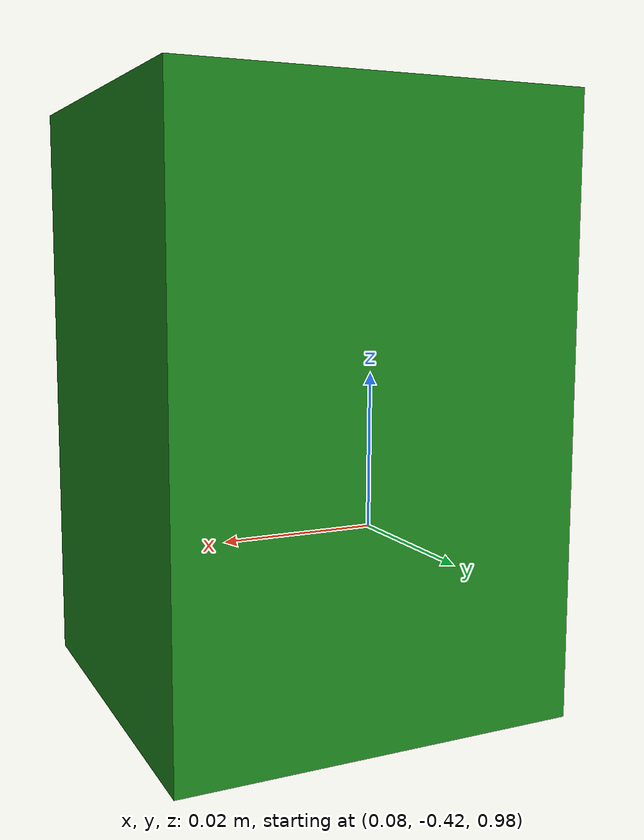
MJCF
<mujoco model="panda objects">

  <asset>
    <material name="obj_green" rgba="0.1 0.5 0.1 1"/>
  </asset>

  <worldbody>
    <!-- Manipulable cube for Panda -->
    <body name="box" pos="0.1 -0.4 1">
      <freejoint/>
      <geom type="box" name="box" size="0.02 0.02 0.03" condim="6" mass="0.05"
        friction="3 0.2 0.1" material="obj_green" contype="1" conaffinity="1"
        solref="0.002 1.0" solimp="0.95 0.99 0.001"/>
    </body>
  </worldbody>

</mujoco>
